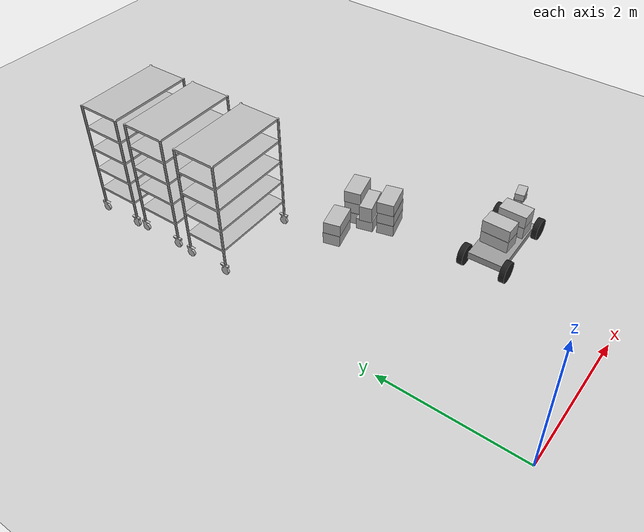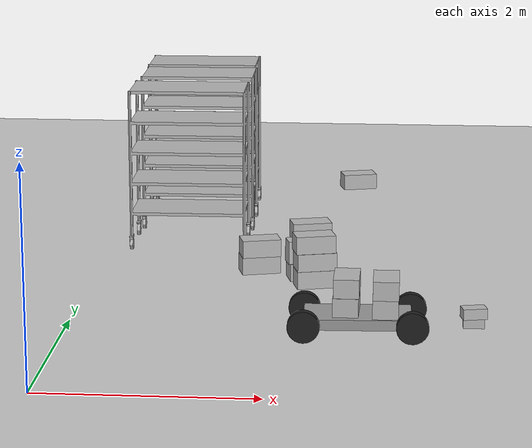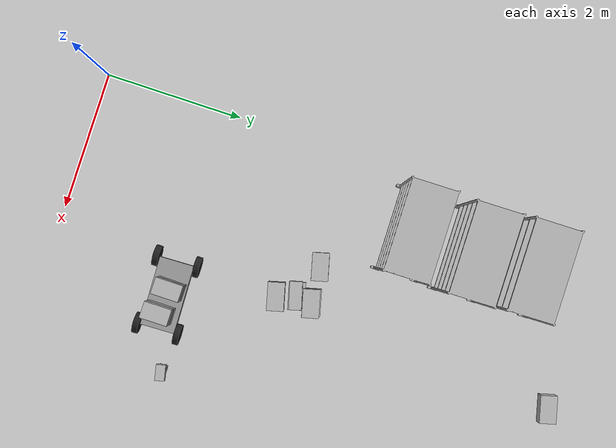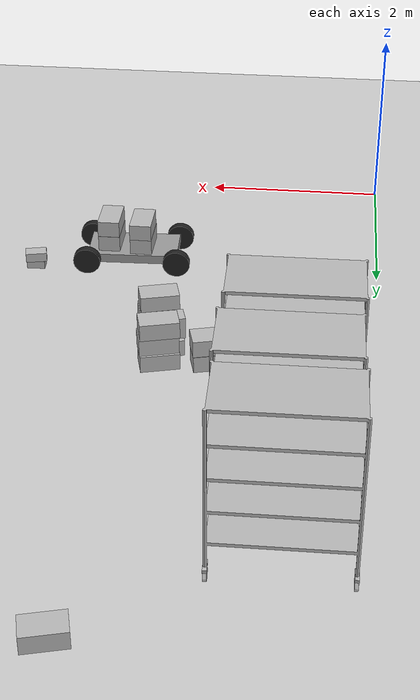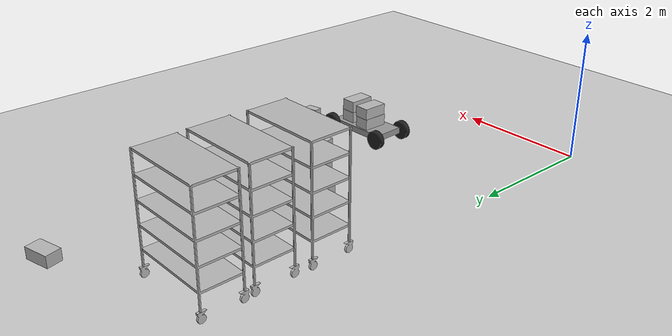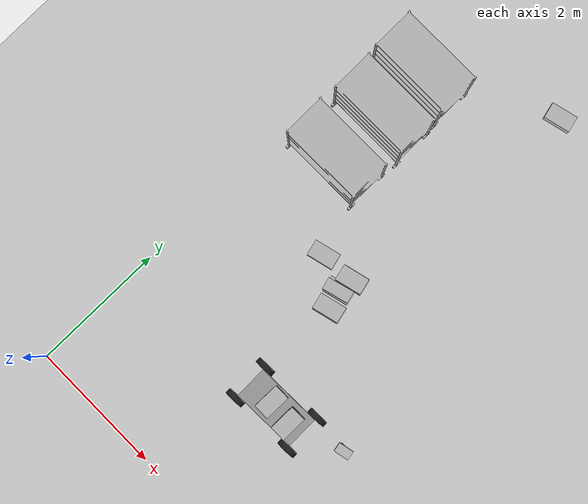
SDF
<sdf version="1.7">
 <world name="default">
  <model name="ground_plane">
   <static>1</static>
   <link name="link">
    <collision name="collision">
     <geometry><plane><normal>0 0 1</normal><size>100 100</size></plane></geometry>
     <surface><friction><ode><mu>100</mu><mu2>50</mu2></ode></friction></surface>
    </collision>
    <visual name="visual">
     <cast_shadows>0</cast_shadows>
     <geometry><plane><normal>0 0 1</normal><size>100 100</size></plane></geometry>
     <material>
      <script><uri>file://media/materials/scripts/gazebo.material</uri><name>Gazebo/Grey</name></script>
     </material>
    </visual>
   </link>
  </model>
  <model name="StorageRack">
   <link name="link">
    <visual name="visual">
     <geometry><mesh><uri>model://StorageRack/meshes/StorageRack.obj</uri></mesh></geometry>
    </visual>
    <collision name="collision">
     <geometry><mesh><uri>model://StorageRack/meshes/StorageRack.obj</uri></mesh></geometry>
    </collision>
    <inertial>
     <inertia><ixx>1</ixx><ixy>0</ixy><ixz>0</ixz><iyy>1</iyy><iyz>0</iyz><izz>1</izz></inertia>
     <mass>1</mass>
    </inertial>
   </link>
   <pose>0.825043 6.42657 -0 0 -0 0.012208</pose>
  </model>
  <model name="small box_clone_1_clone_3">
   <pose>2.99828 1.80005 0.289999 -2e-06 4e-06 -1.56793</pose>
   <static>0</static>
   <link name="link">
    <inertial>
     <mass>2</mass>
     <inertia><ixx>1</ixx><ixy>0</ixy><ixz>0</ixz><iyy>1</iyy><iyz>0</iyz><izz>1</izz></inertia>
    </inertial>
    <collision name="collision">
     <geometry><box><size>0.4 0.23 0.18</size></box></geometry>
     <surface><contact><ode><max_vel>0.1</max_vel><min_depth>0.001</min_depth></ode></contact></surface>
    </collision>
    <visual name="visual">
     <geometry><mesh><uri>model://small_box/meshes/small_box.dae</uri></mesh></geometry>
    </visual>
   </link>
  </model>
  <model name="small box_clone_1_clone_4">
   <pose>2.63274 1.83864 0.290002 2e-06 1e-06 1.55552</pose>
   <static>0</static>
   <link name="link">
    <inertial>
     <mass>2</mass>
     <inertia><ixx>1</ixx><ixy>0</ixy><ixz>0</ixz><iyy>1</iyy><iyz>0</iyz><izz>1</izz></inertia>
    </inertial>
    <collision name="collision">
     <geometry><box><size>0.4 0.23 0.18</size></box></geometry>
     <surface><contact><ode><max_vel>0.1</max_vel><min_depth>0.001</min_depth></ode></contact></surface>
    </collision>
    <visual name="visual">
     <geometry><mesh><uri>model://small_box/meshes/small_box.dae</uri></mesh></geometry>
    </visual>
   </link>
  </model>
  <model name="cart_front_steer">
   <link name="chassis">
    <pose>0 0 0.15 0 -0 0</pose>
    <inertial>
     <pose>0.1 0 0 0 -0 0</pose>
     <mass>10</mass>
     <inertia>
      <ixx>0.216667</ixx>
      <iyy>0.841667</iyy>
      <izz>1.04167</izz>
      <ixy>0</ixy>
      <ixz>0</ixz>
      <iyz>0</iyz>
     </inertia>
    </inertial>
    <collision name="collision"><geometry><box><size>1 0.5 0.1</size></box></geometry></collision>
    <visual name="visual">
     <geometry><box><size>1 0.5 0.1</size></box></geometry>
     <material>
      <script><uri>file://media/materials/scripts/gazebo.material</uri><name>Gazebo/Grey</name></script>
     </material>
    </visual>
   </link>
   <link name="wheel_front_left">
    <pose>0.5 0.298 0.15 -1.5708 -0.087266 0</pose>
    <inertial>
     <mass>0.5</mass>
     <inertia>
      <ixx>0.00307917</ixx>
      <iyy>0.00307917</iyy>
      <izz>0.005625</izz>
      <ixy>0</ixy>
      <ixz>0</ixz>
      <iyz>0</iyz>
     </inertia>
    </inertial>
    <collision name="collision">
     <geometry><cylinder><radius>0.15</radius><length>0.08</length></cylinder></geometry>
    </collision>
    <visual name="visual">
     <geometry><cylinder><radius>0.15</radius><length>0.08</length></cylinder></geometry>
     <material>
      <script><uri>file://media/materials/scripts/gazebo.material</uri><name>Gazebo/Black</name></script>
     </material>
    </visual>
   </link>
   <joint name="wheel_front_left_steer_spin" type="universal">
    <parent>chassis</parent>
    <child>wheel_front_left</child>
    <axis>
     <xyz>0 -1 0</xyz>
     <limit><lower>-0.610865</lower><upper>0.610865</upper></limit>
     <dynamics><spring_reference>0</spring_reference><spring_stiffness>0</spring_stiffness></dynamics>
    </axis>
    <axis2>
     <xyz>0 0 1</xyz>
     <limit><upper>1e+16</upper><lower>-1e+16</lower></limit>
     <dynamics><spring_reference>0</spring_reference><spring_stiffness>0</spring_stiffness></dynamics>
    </axis2>
   </joint>
   <link name="wheel_front_right">
    <pose>0.5 -0.298 0.15 -1.5708 -0.087266 0</pose>
    <inertial>
     <mass>0.5</mass>
     <inertia>
      <ixx>0.00307917</ixx>
      <iyy>0.00307917</iyy>
      <izz>0.005625</izz>
      <ixy>0</ixy>
      <ixz>0</ixz>
      <iyz>0</iyz>
     </inertia>
    </inertial>
    <collision name="collision">
     <geometry><cylinder><radius>0.15</radius><length>0.08</length></cylinder></geometry>
    </collision>
    <visual name="visual">
     <geometry><cylinder><radius>0.15</radius><length>0.08</length></cylinder></geometry>
     <material>
      <script><uri>file://media/materials/scripts/gazebo.material</uri><name>Gazebo/Black</name></script>
     </material>
    </visual>
   </link>
   <joint name="wheel_front_right_steer_spin" type="universal">
    <parent>chassis</parent>
    <child>wheel_front_right</child>
    <axis>
     <xyz>0 -1 0</xyz>
     <limit><lower>-0.610865</lower><upper>0.610865</upper></limit>
     <dynamics><spring_reference>0</spring_reference><spring_stiffness>0</spring_stiffness></dynamics>
    </axis>
    <axis2>
     <xyz>0 0 1</xyz>
     <limit><upper>1e+16</upper><lower>-1e+16</lower></limit>
     <dynamics><spring_reference>0</spring_reference><spring_stiffness>0</spring_stiffness></dynamics>
    </axis2>
   </joint>
   <link name="wheel_rear_left">
    <pose>-0.5 0.298 0.15 -1.5708 0 0</pose>
    <inertial>
     <mass>0.5</mass>
     <inertia>
      <ixx>0.00307917</ixx>
      <iyy>0.00307917</iyy>
      <izz>0.005625</izz>
      <ixy>0</ixy>
      <ixz>0</ixz>
      <iyz>0</iyz>
     </inertia>
    </inertial>
    <collision name="collision">
     <geometry><cylinder><radius>0.15</radius><length>0.08</length></cylinder></geometry>
    </collision>
    <visual name="visual">
     <geometry><cylinder><radius>0.15</radius><length>0.08</length></cylinder></geometry>
     <material>
      <script><uri>file://media/materials/scripts/gazebo.material</uri><name>Gazebo/Black</name></script>
     </material>
    </visual>
   </link>
   <joint name="wheel_rear_left_spin" type="revolute">
    <parent>chassis</parent>
    <child>wheel_rear_left</child>
    <axis>
     <xyz>0 0 1</xyz>
     <limit><lower>-1e+16</lower><upper>1e+16</upper></limit>
     <dynamics><spring_reference>0</spring_reference><spring_stiffness>0</spring_stiffness></dynamics>
    </axis>
   </joint>
   <link name="wheel_rear_right">
    <pose>-0.5 -0.298 0.15 -1.5708 0 0</pose>
    <inertial>
     <mass>0.5</mass>
     <inertia>
      <ixx>0.00307917</ixx>
      <iyy>0.00307917</iyy>
      <izz>0.005625</izz>
      <ixy>0</ixy>
      <ixz>0</ixz>
      <iyz>0</iyz>
     </inertia>
    </inertial>
    <collision name="collision">
     <geometry><cylinder><radius>0.15</radius><length>0.08</length></cylinder></geometry>
    </collision>
    <visual name="visual">
     <geometry><cylinder><radius>0.15</radius><length>0.08</length></cylinder></geometry>
     <material>
      <script><uri>file://media/materials/scripts/gazebo.material</uri><name>Gazebo/Black</name></script>
     </material>
    </visual>
   </link>
   <joint name="wheel_rear_right_spin" type="revolute">
    <parent>chassis</parent>
    <child>wheel_rear_right</child>
    <axis>
     <xyz>0 0 1</xyz>
     <limit><lower>-1e+16</lower><upper>1e+16</upper></limit>
     <dynamics><spring_reference>0</spring_reference><spring_stiffness>0</spring_stiffness></dynamics>
    </axis>
   </joint>
   <pose>2.74016 1.81983 1e-06 -9e-06 8e-06 0.031525</pose>
  </model>
  <model name="StorageRack_clone">
   <link name="link">
    <visual name="visual">
     <geometry><mesh><uri>model://StorageRack/meshes/StorageRack.obj</uri></mesh></geometry>
    </visual>
    <collision name="collision">
     <geometry><mesh><uri>model://StorageRack/meshes/StorageRack.obj</uri></mesh></geometry>
    </collision>
    <inertial>
     <inertia><ixx>1</ixx><ixy>0</ixy><ixz>0</ixz><iyy>1</iyy><iyz>0</iyz><izz>1</izz></inertia>
     <mass>1</mass>
    </inertial>
   </link>
   <pose>0.851414 5.66329 -1e-06 0 -2e-06 0.012208</pose>
  </model>
  <model name="StorageRack_clone_2">
   <link name="link">
    <visual name="visual">
     <geometry><mesh><uri>model://StorageRack/meshes/StorageRack.obj</uri></mesh></geometry>
    </visual>
    <collision name="collision">
     <geometry><mesh><uri>model://StorageRack/meshes/StorageRack.obj</uri></mesh></geometry>
    </collision>
    <inertial>
     <inertia><ixx>1</ixx><ixy>0</ixy><ixz>0</ixz><iyy>1</iyy><iyz>0</iyz><izz>1</izz></inertia>
     <mass>1</mass>
    </inertial>
   </link>
   <pose>0.834328 4.79903 -1e-06 0 2e-06 0.012208</pose>
  </model>
  <model name="small box_clone_7_clone_0">
   <pose>2.59368 7.48891 0.089996 3.14159 1.6e-05 -2.88792</pose>
   <static>0</static>
   <link name="link">
    <inertial>
     <mass>2</mass>
     <inertia><ixx>1</ixx><ixy>0</ixy><ixz>0</ixz><iyy>1</iyy><iyz>0</iyz><izz>1</izz></inertia>
    </inertial>
    <collision name="collision">
     <geometry><box><size>0.4 0.23 0.18</size></box></geometry>
     <surface><contact><ode><max_vel>0.1</max_vel><min_depth>0.001</min_depth></ode></contact></surface>
    </collision>
    <visual name="visual">
     <geometry><mesh><uri>model://small_box/meshes/small_box.dae</uri></mesh></geometry>
    </visual>
   </link>
  </model>
  <model name="small box_clone_7_clone_6">
   <pose>2.26594 3.29596 0.089999 3.14159 -0 -2.88788</pose>
   <static>0</static>
   <link name="link">
    <inertial>
     <mass>2</mass>
     <inertia><ixx>1</ixx><ixy>0</ixy><ixz>0</ixz><iyy>1</iyy><iyz>0</iyz><izz>1</izz></inertia>
    </inertial>
    <collision name="collision">
     <geometry><box><size>0.4 0.23 0.18</size></box></geometry>
     <surface><contact><ode><max_vel>0.1</max_vel><min_depth>0.001</min_depth></ode></contact></surface>
    </collision>
    <visual name="visual">
     <geometry><mesh><uri>model://small_box/meshes/small_box.dae</uri></mesh></geometry>
    </visual>
   </link>
  </model>
  <model name="small box_clone_7_clone_7">
   <pose>2.26926 3.2986 0.269999 3.14159 0 -2.88718</pose>
   <static>0</static>
   <link name="link">
    <inertial>
     <mass>2</mass>
     <inertia><ixx>1</ixx><ixy>0</ixy><ixz>0</ixz><iyy>1</iyy><iyz>0</iyz><izz>1</izz></inertia>
    </inertial>
    <collision name="collision">
     <geometry><box><size>0.4 0.23 0.18</size></box></geometry>
     <surface><contact><ode><max_vel>0.1</max_vel><min_depth>0.001</min_depth></ode></contact></surface>
    </collision>
    <visual name="visual">
     <geometry><mesh><uri>model://small_box/meshes/small_box.dae</uri></mesh></geometry>
    </visual>
   </link>
  </model>
  <model name="small box_clone_7_clone_8">
   <pose>1.67112 3.76676 0.09 3.14159 -0 -2.88771</pose>
   <static>0</static>
   <link name="link">
    <inertial>
     <mass>2</mass>
     <inertia><ixx>1</ixx><ixy>0</ixy><ixz>0</ixz><iyy>1</iyy><iyz>0</iyz><izz>1</izz></inertia>
    </inertial>
    <collision name="collision">
     <geometry><box><size>0.4 0.23 0.18</size></box></geometry>
     <surface><contact><ode><max_vel>0.1</max_vel><min_depth>0.001</min_depth></ode></contact></surface>
    </collision>
    <visual name="visual">
     <geometry><mesh><uri>model://small_box/meshes/small_box.dae</uri></mesh></geometry>
    </visual>
   </link>
  </model>
  <model name="small box_clone_7_clone_9">
   <pose>2.17825 3.57605 0.089991 -3.14159 -0 -2.88895</pose>
   <static>0</static>
   <link name="link">
    <inertial>
     <mass>2</mass>
     <inertia><ixx>1</ixx><ixy>0</ixy><ixz>0</ixz><iyy>1</iyy><iyz>0</iyz><izz>1</izz></inertia>
    </inertial>
    <collision name="collision">
     <geometry><box><size>0.4 0.23 0.18</size></box></geometry>
     <surface><contact><ode><max_vel>0.1</max_vel><min_depth>0.001</min_depth></ode></contact></surface>
    </collision>
    <visual name="visual">
     <geometry><mesh><uri>model://small_box/meshes/small_box.dae</uri></mesh></geometry>
    </visual>
   </link>
  </model>
  <model name="small box_clone_7_clone_10">
   <pose>2.2576 3.301 0.449993 -3.14155 4e-06 -2.88762</pose>
   <static>0</static>
   <link name="link">
    <inertial>
     <mass>2</mass>
     <inertia><ixx>1</ixx><ixy>0</ixy><ixz>0</ixz><iyy>1</iyy><iyz>0</iyz><izz>1</izz></inertia>
    </inertial>
    <collision name="collision">
     <geometry><box><size>0.4 0.23 0.18</size></box></geometry>
     <surface><contact><ode><max_vel>0.1</max_vel><min_depth>0.001</min_depth></ode></contact></surface>
    </collision>
    <visual name="visual">
     <geometry><mesh><uri>model://small_box/meshes/small_box.dae</uri></mesh></geometry>
    </visual>
   </link>
  </model>
  <model name="small box_clone_7_clone_11">
   <pose>2.20824 3.79611 0.269995 -3.14159 3e-06 -2.88851</pose>
   <static>0</static>
   <link name="link">
    <inertial>
     <mass>2</mass>
     <inertia><ixx>1</ixx><ixy>0</ixy><ixz>0</ixz><iyy>1</iyy><iyz>0</iyz><izz>1</izz></inertia>
    </inertial>
    <collision name="collision">
     <geometry><box><size>0.4 0.23 0.18</size></box></geometry>
     <surface><contact><ode><max_vel>0.1</max_vel><min_depth>0.001</min_depth></ode></contact></surface>
    </collision>
    <visual name="visual">
     <geometry><mesh><uri>model://small_box/meshes/small_box.dae</uri></mesh></geometry>
    </visual>
   </link>
  </model>
  <model name="small box_clone_7_clone_12">
   <pose>2.1668 3.55887 0.294507 -1.57281 0.000736 -2.86948</pose>
   <static>0</static>
   <link name="link">
    <inertial>
     <mass>2</mass>
     <inertia><ixx>1</ixx><ixy>0</ixy><ixz>0</ixz><iyy>1</iyy><iyz>0</iyz><izz>1</izz></inertia>
    </inertial>
    <collision name="collision">
     <geometry><box><size>0.4 0.23 0.18</size></box></geometry>
     <surface><contact><ode><max_vel>0.1</max_vel><min_depth>0.001</min_depth></ode></contact></surface>
    </collision>
    <visual name="visual">
     <geometry><mesh><uri>model://small_box/meshes/small_box.dae</uri></mesh></geometry>
    </visual>
   </link>
  </model>
  <model name="small box_clone_7_clone_13">
   <pose>2.19763 3.79581 0.449591 -3.1407 -0.000789 -2.88861</pose>
   <static>0</static>
   <link name="link">
    <inertial>
     <mass>2</mass>
     <inertia><ixx>1</ixx><ixy>0</ixy><ixz>0</ixz><iyy>1</iyy><iyz>0</iyz><izz>1</izz></inertia>
    </inertial>
    <collision name="collision">
     <geometry><box><size>0.4 0.23 0.18</size></box></geometry>
     <surface><contact><ode><max_vel>0.1</max_vel><min_depth>0.001</min_depth></ode></contact></surface>
    </collision>
    <visual name="visual">
     <geometry><mesh><uri>model://small_box/meshes/small_box.dae</uri></mesh></geometry>
    </visual>
   </link>
  </model>
  <model name="small box_clone_7_clone_14">
   <pose>2.19754 3.81773 0.089995 -3.14159 3e-06 -2.88898</pose>
   <static>0</static>
   <link name="link">
    <inertial>
     <mass>2</mass>
     <inertia><ixx>1</ixx><ixy>0</ixy><ixz>0</ixz><iyy>1</iyy><iyz>0</iyz><izz>1</izz></inertia>
    </inertial>
    <collision name="collision">
     <geometry><box><size>0.4 0.23 0.18</size></box></geometry>
     <surface><contact><ode><max_vel>0.1</max_vel><min_depth>0.001</min_depth></ode></contact></surface>
    </collision>
    <visual name="visual">
     <geometry><mesh><uri>model://small_box/meshes/small_box.dae</uri></mesh></geometry>
    </visual>
   </link>
  </model>
  <model name="small box_clone_7_clone_15">
   <pose>1.67663 3.76151 0.269663 3.14138 -8.4e-05 -2.88754</pose>
   <static>0</static>
   <link name="link">
    <inertial>
     <mass>2</mass>
     <inertia><ixx>1</ixx><ixy>0</ixy><ixz>0</ixz><iyy>1</iyy><iyz>0</iyz><izz>1</izz></inertia>
    </inertial>
    <collision name="collision">
     <geometry><box><size>0.4 0.23 0.18</size></box></geometry>
     <surface><contact><ode><max_vel>0.1</max_vel><min_depth>0.001</min_depth></ode></contact></surface>
    </collision>
    <visual name="visual">
     <geometry><mesh><uri>model://small_box/meshes/small_box.dae</uri></mesh></geometry>
    </visual>
   </link>
  </model>
  <model name="small box_clone_7_clone_33">
   <pose>3.82314 2.07328 0.044785 0 1e-06 -3.11641</pose>
   <static>0</static>
   <link name="link">
    <inertial>
     <mass>2</mass>
     <inertia><ixx>1</ixx><ixy>0</ixy><ixz>0</ixz><iyy>1</iyy><iyz>0</iyz><izz>1</izz></inertia>
    </inertial>
    <collision name="collision">
     <geometry><box><size>0.4 0.23 0.179999</size></box></geometry>
     <surface><contact><ode><max_vel>0.1</max_vel><min_depth>0.001</min_depth></ode></contact></surface>
    </collision>
    <visual name="visual">
     <geometry>
      <mesh><uri>model://small_box/meshes/small_box.dae</uri><scale>0.497674 0.497674 0.497674</scale></mesh>
     </geometry>
    </visual>
   </link>
  </model>
  <model name="small box_clone_7_clone_37">
   <pose>3.0012 1.79685 0.469991 -1e-06 2e-06 1.57442</pose>
   <static>0</static>
   <link name="link">
    <inertial>
     <mass>2</mass>
     <inertia><ixx>1</ixx><ixy>0</ixy><ixz>0</ixz><iyy>1</iyy><iyz>0</iyz><izz>1</izz></inertia>
    </inertial>
    <collision name="collision">
     <geometry><box><size>0.4 0.23 0.18</size></box></geometry>
     <surface><contact><ode><max_vel>0.1</max_vel><min_depth>0.001</min_depth></ode></contact></surface>
    </collision>
    <visual name="visual">
     <geometry><mesh><uri>model://small_box/meshes/small_box.dae</uri></mesh></geometry>
    </visual>
   </link>
  </model>
  <model name="small box_clone_7_clone_38">
   <pose>3.82217 2.07177 0.141361 3.14158 -3.1e-05 -2.92466</pose>
   <static>0</static>
   <link name="link">
    <inertial>
     <mass>2</mass>
     <inertia><ixx>1</ixx><ixy>0</ixy><ixz>0</ixz><iyy>1</iyy><iyz>0</iyz><izz>1</izz></inertia>
    </inertial>
    <collision name="collision">
     <geometry><box><size>0.4 0.229999 0.18</size></box></geometry>
     <surface><contact><ode><max_vel>0.1</max_vel><min_depth>0.001</min_depth></ode></contact></surface>
    </collision>
    <visual name="visual">
     <geometry>
      <mesh><uri>model://small_box/meshes/small_box.dae</uri><scale>0.575428 0.575428 0.575428</scale></mesh>
     </geometry>
    </visual>
   </link>
  </model>
  <model name="small box_clone_1_clone_4_clone">
   <pose>2.63657 1.84225 0.469999 -2e-06 -0 1.56507</pose>
   <static>0</static>
   <link name="link">
    <inertial>
     <mass>2</mass>
     <inertia><ixx>1</ixx><ixy>0</ixy><ixz>0</ixz><iyy>1</iyy><iyz>0</iyz><izz>1</izz></inertia>
    </inertial>
    <collision name="collision">
     <geometry><box><size>0.4 0.23 0.18</size></box></geometry>
     <surface><contact><ode><max_vel>0.1</max_vel><min_depth>0.001</min_depth></ode></contact></surface>
    </collision>
    <visual name="visual">
     <geometry><mesh><uri>model://small_box/meshes/small_box.dae</uri></mesh></geometry>
    </visual>
   </link>
  </model>
 </world>
</sdf>
